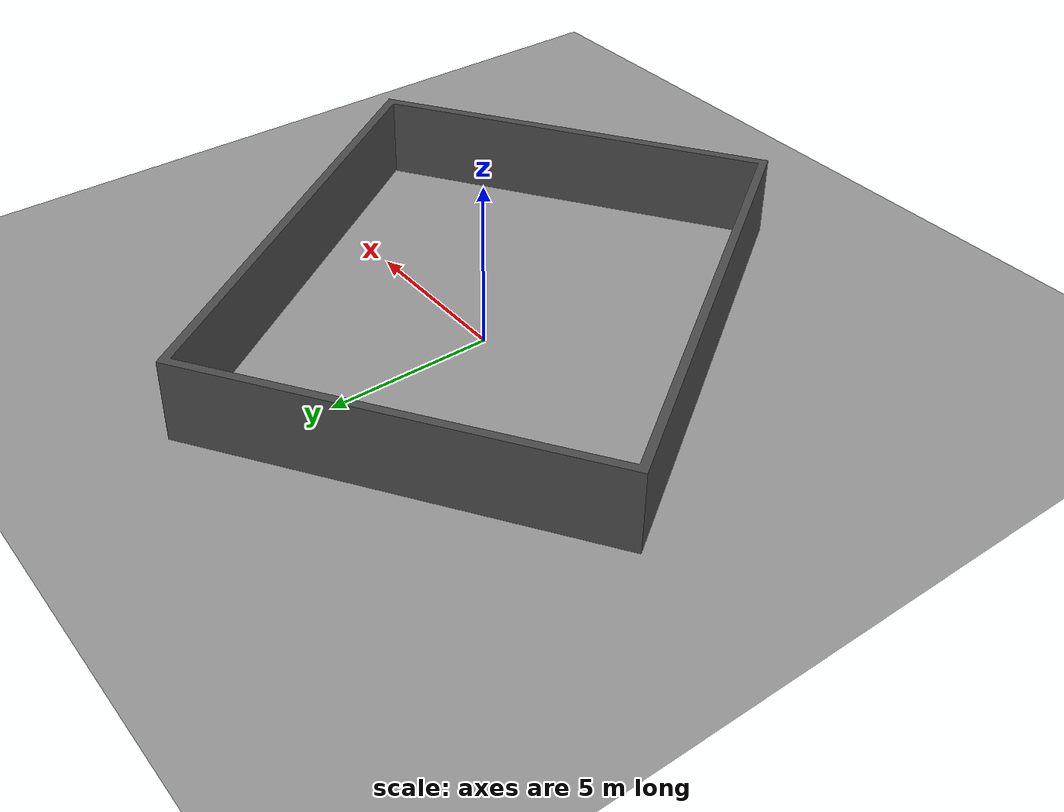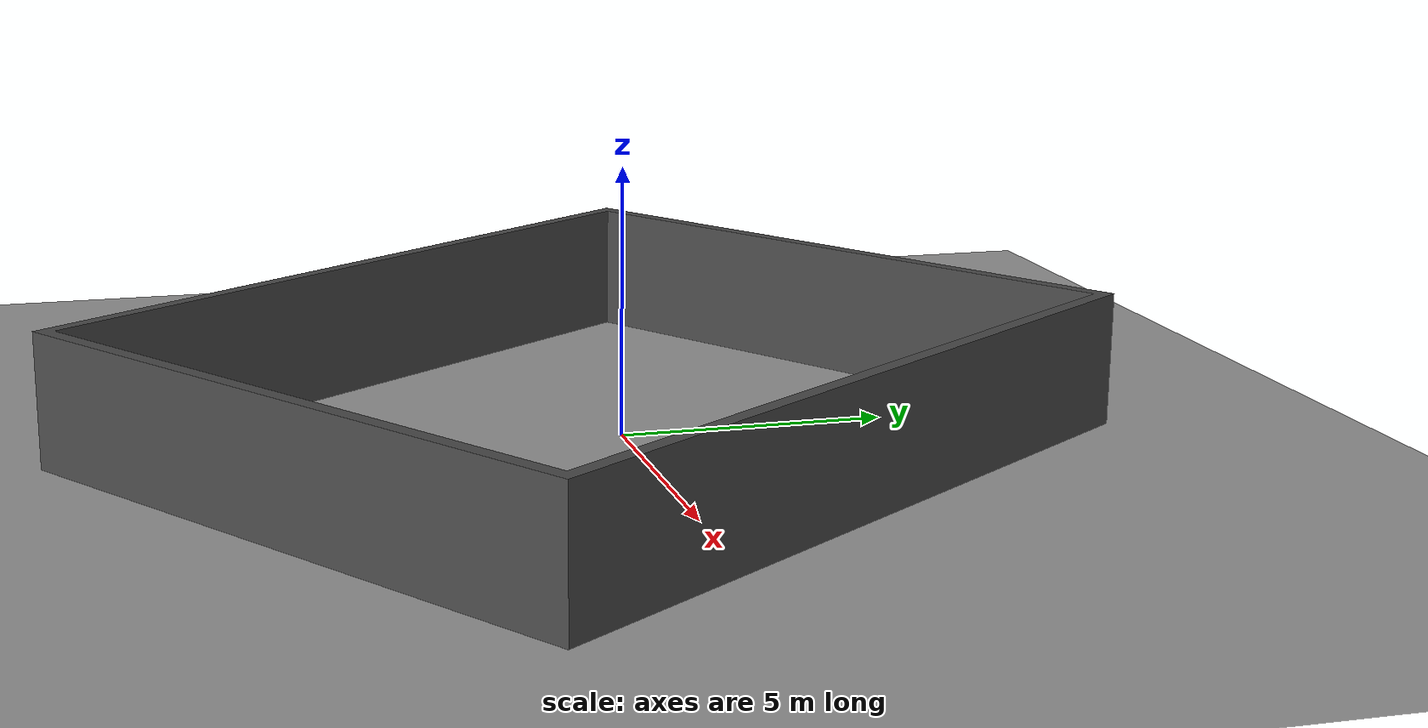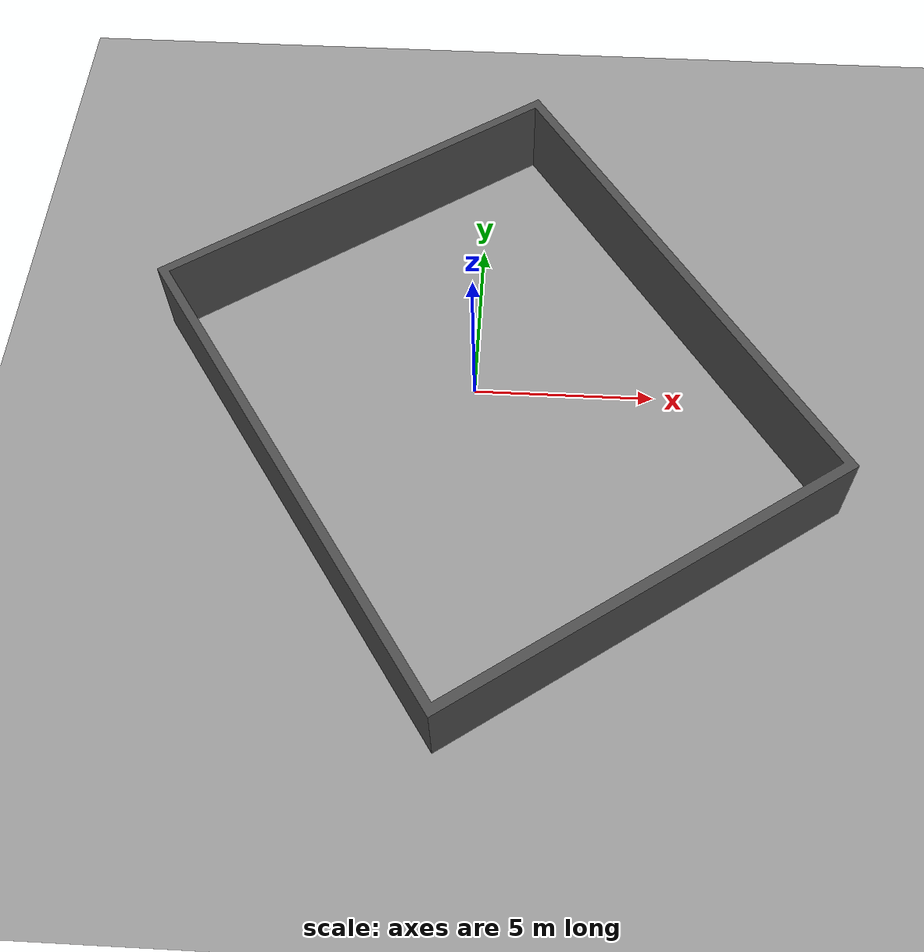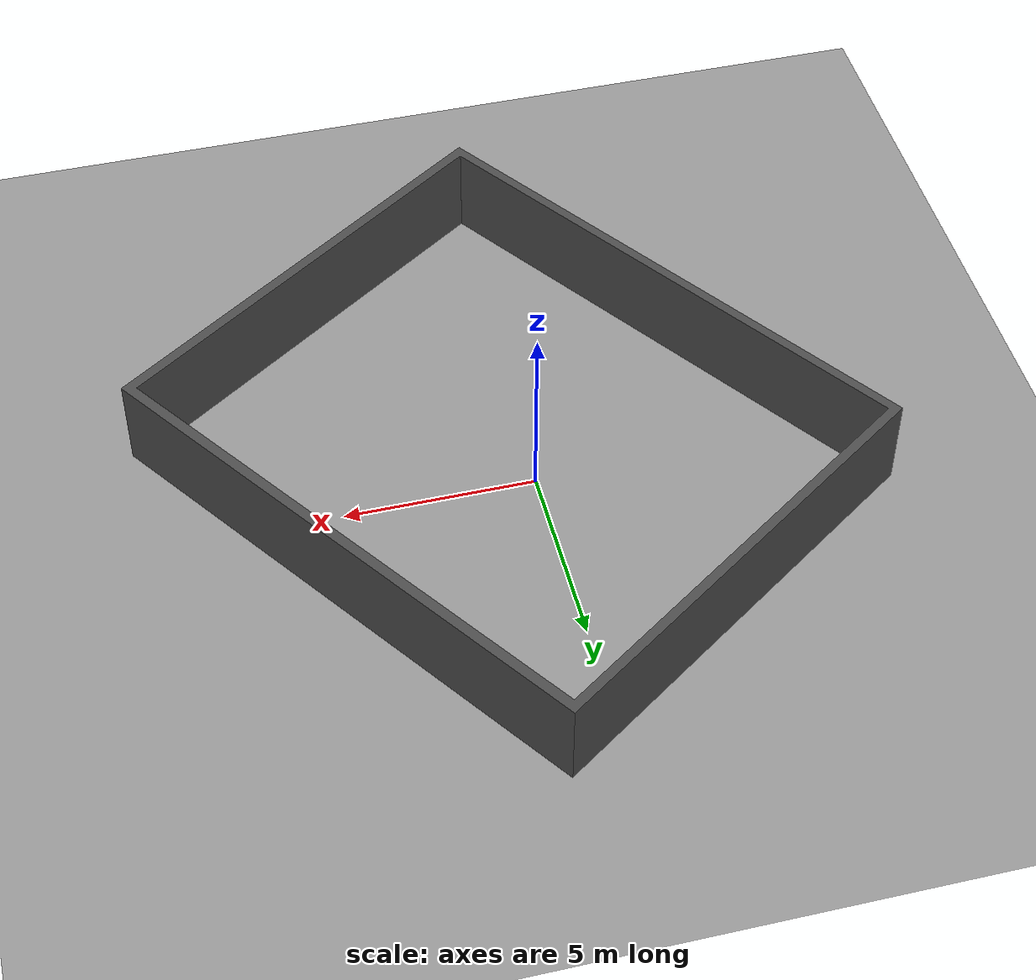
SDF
<sdf version="1.4">
 <world name="default">
  <light name="sun" type="directional">
   <pose>0 0 10 0 -0 0</pose>
   <diffuse>0.8 0.8 0.8 1</diffuse>
   <specular>0.2 0.2 0.2 1</specular>
   <attenuation>
    <range>1000</range>
    <constant>0.9</constant>
    <linear>0.01</linear>
    <quadratic>0.001</quadratic>
   </attenuation>
   <direction>0.5 0.1 -0.9</direction>
  </light>
  <scene><ambient>0.4 0.4 0.4 1</ambient><background>0.7 0.7 0.7 1</background><shadows>1</shadows></scene>
  <physics type="ode">
   <max_step_size>0.01</max_step_size>
   <real_time_factor>1</real_time_factor>
   <real_time_update_rate>100</real_time_update_rate>
   <gravity>0 0 -9.8</gravity>
  </physics>
  <model name="ground_plane_0">
   <static>1</static>
   <link name="link">
    <collision name="collision">
     <geometry><plane><normal>0 0 1</normal><size>100 100</size></plane></geometry>
     <surface><friction><ode><mu>100</mu><mu2>50</mu2></ode></friction></surface>
    </collision>
    <visual name="visual">
     <cast_shadows>0</cast_shadows>
     <geometry><plane><normal>0 0 1</normal><size>100 100</size></plane></geometry>
     <material>
      <script><uri>file://media/materials/scripts/gazebo.material</uri><name>Gazebo/Grey</name></script>
     </material>
    </visual>
    <velocity_decay><linear>0</linear><angular>0</angular></velocity_decay>
   </link>
   <pose>0.497681 0 0 0 -0 0</pose>
  </model>
  <include><uri>model://lab_wall</uri><name>lab_wall01</name><pose>.5 -.7 0 0 0 0.6</pose></include>
 </world>
</sdf>

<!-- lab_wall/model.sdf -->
<sdf version="1.8">
  <model name="lab_wall">
    <static>true</static>
    <pose>0 0 0 0 0 0</pose>

    <link name="wall_link">

      <!-- Visual mesh -->
      <visual name="wall_visual">
        <geometry>
          <mesh>
            <uri>model://lab_wall/meshes/wall.stl</uri>
            <scale>0.0025 0.0025 0.001</scale>
          </mesh>
        </geometry>
         <material>
          <ambient>0.2 0.2 0.2 1</ambient>
          <diffuse>0.3 0.3 0.3 1</diffuse>
          <specular>0.05 0.05 0.05 1</specular>
        </material>
      </visual>

      <!-- Simple collision -->
      <collision name="wall_collision">
        <pose>0 0 0.4 0 0 0</pose>
        <geometry>
          <box>
            <size>1.2 0.8 0.8</size>
          </box>
        </geometry>
      </collision>

    </link>
  </model>
</sdf>
